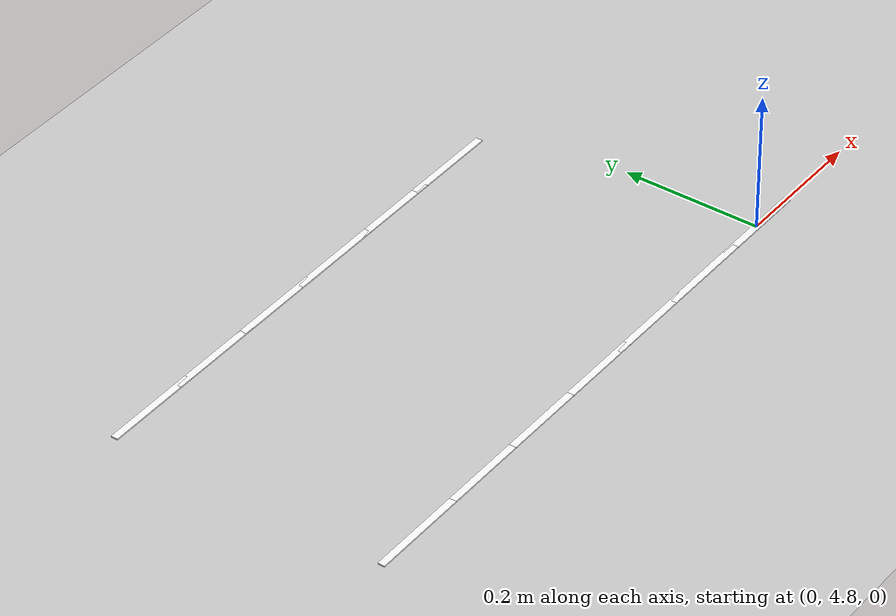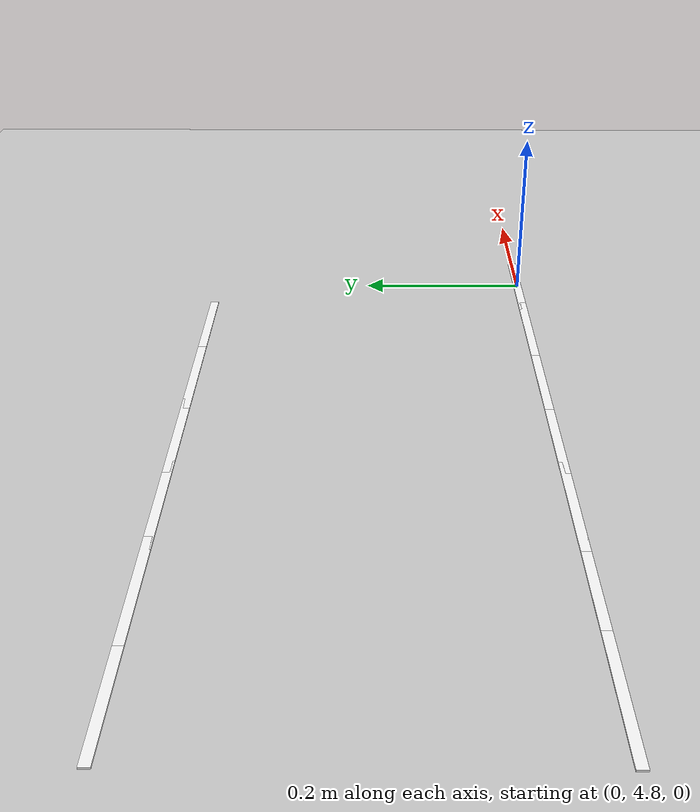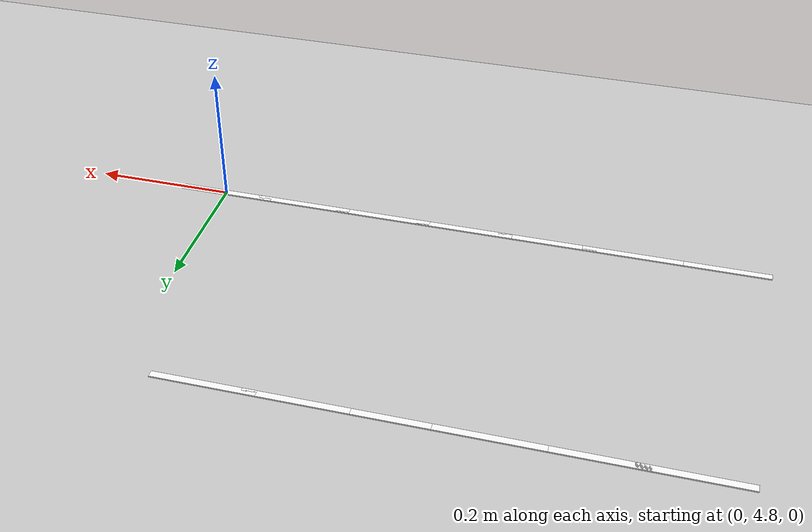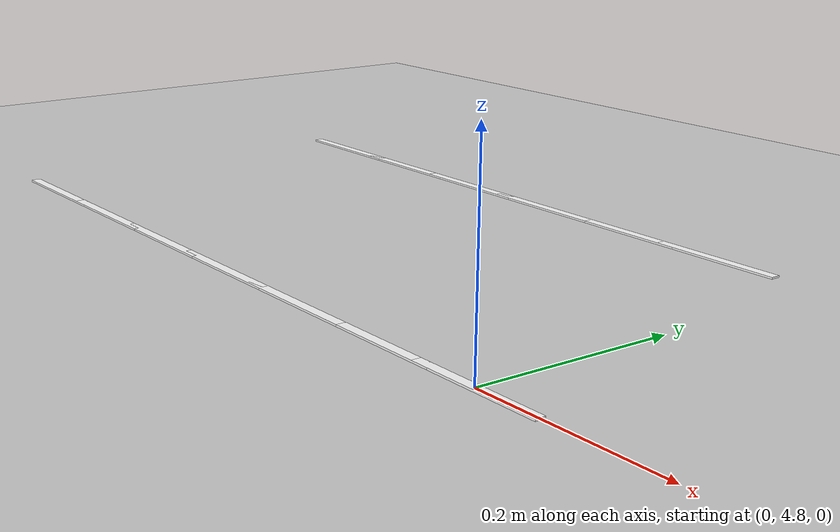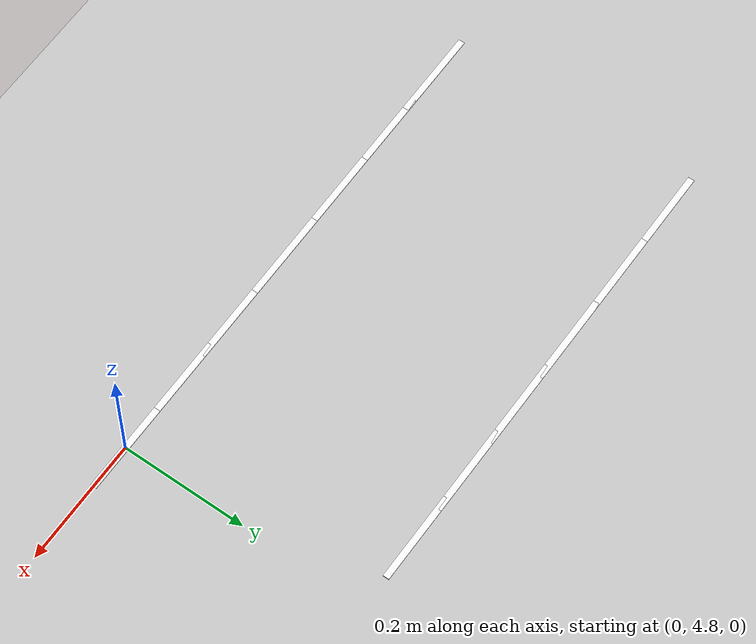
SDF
<sdf version="1.7">
 <world name="default">
  <model name="ground_plane">
   <static>1</static>
   <link name="link">
    <collision name="collision">
     <geometry><plane><normal>0 0 1</normal><size>100 100</size></plane></geometry>
     <surface>
      <contact><collide_bitmask>65535</collide_bitmask></contact>
      <friction><ode><mu>100</mu><mu2>50</mu2></ode></friction>
     </surface>
    </collision>
    <visual name="visual">
     <cast_shadows>0</cast_shadows>
     <geometry><plane><normal>0 0 1</normal><size>100 100</size></plane></geometry>
     <material>
      <script><uri>file://media/materials/scripts/gazebo.material</uri><name>Gazebo/Grey</name></script>
     </material>
    </visual>
   </link>
  </model>
  <model name="lane_line_left_224">
   <static>1</static>
   <link name="link">
    <pose>0 0 -0.004 0 -0 0</pose>
    <visual name="visual">
     <geometry><box><size>0.1424 0.01 0.01</size></box></geometry>
     <material><ambient>1 1 1 1</ambient><diffuse>1 1 1 1</diffuse></material>
    </visual>
    <collision name="collision"><geometry><box><size>0.1424 0.01 0.01</size></box></geometry></collision>
   </link>
   <pose>0 4.8 0 0 -0 3.14159</pose>
  </model>
  <model name="lane_line_left_225">
   <static>1</static>
   <link name="link">
    <pose>0 0 -0.004 0 -0 0</pose>
    <visual name="visual">
     <geometry><box><size>0.1424 0.01 0.01</size></box></geometry>
     <material><ambient>1 1 1 1</ambient><diffuse>1 1 1 1</diffuse></material>
    </visual>
    <collision name="collision"><geometry><box><size>0.1424 0.01 0.01</size></box></geometry></collision>
   </link>
   <pose>-0.122449 4.8 0 0 -0 3.14159</pose>
  </model>
  <model name="lane_line_right_225">
   <static>1</static>
   <link name="link">
    <pose>0 0 -0.004 0 -0 0</pose>
    <visual name="visual">
     <geometry><box><size>0.1424 0.01 0.01</size></box></geometry>
     <material><ambient>1 1 1 1</ambient><diffuse>1 1 1 1</diffuse></material>
    </visual>
    <collision name="collision"><geometry><box><size>0.1424 0.01 0.01</size></box></geometry></collision>
   </link>
   <pose>-0.122449 5.2 0 0 -0 3.14159</pose>
  </model>
  <model name="lane_line_left_226">
   <static>1</static>
   <link name="link">
    <pose>0 0 -0.004 0 -0 0</pose>
    <visual name="visual">
     <geometry><box><size>0.1424 0.01 0.01</size></box></geometry>
     <material><ambient>1 1 1 1</ambient><diffuse>1 1 1 1</diffuse></material>
    </visual>
    <collision name="collision"><geometry><box><size>0.1424 0.01 0.01</size></box></geometry></collision>
   </link>
   <pose>-0.244898 4.8 0 0 -0 3.14159</pose>
  </model>
  <model name="lane_line_right_226">
   <static>1</static>
   <link name="link">
    <pose>0 0 -0.004 0 -0 0</pose>
    <visual name="visual">
     <geometry><box><size>0.1424 0.01 0.01</size></box></geometry>
     <material><ambient>1 1 1 1</ambient><diffuse>1 1 1 1</diffuse></material>
    </visual>
    <collision name="collision"><geometry><box><size>0.1424 0.01 0.01</size></box></geometry></collision>
   </link>
   <pose>-0.244898 5.2 0 0 -0 3.14159</pose>
  </model>
  <model name="lane_line_left_227">
   <static>1</static>
   <link name="link">
    <pose>0 0 -0.004 0 -0 0</pose>
    <visual name="visual">
     <geometry><box><size>0.1424 0.01 0.01</size></box></geometry>
     <material><ambient>1 1 1 1</ambient><diffuse>1 1 1 1</diffuse></material>
    </visual>
    <collision name="collision"><geometry><box><size>0.1424 0.01 0.01</size></box></geometry></collision>
   </link>
   <pose>-0.367347 4.8 0 0 -0 3.14159</pose>
  </model>
  <model name="lane_line_right_227">
   <static>1</static>
   <link name="link">
    <pose>0 0 -0.004 0 -0 0</pose>
    <visual name="visual">
     <geometry><box><size>0.1424 0.01 0.01</size></box></geometry>
     <material><ambient>1 1 1 1</ambient><diffuse>1 1 1 1</diffuse></material>
    </visual>
    <collision name="collision"><geometry><box><size>0.1424 0.01 0.01</size></box></geometry></collision>
   </link>
   <pose>-0.367347 5.2 0 0 -0 3.14159</pose>
  </model>
  <model name="lane_line_left_228">
   <static>1</static>
   <link name="link">
    <pose>0 0 -0.004 0 -0 0</pose>
    <visual name="visual">
     <geometry><box><size>0.1424 0.01 0.01</size></box></geometry>
     <material><ambient>1 1 1 1</ambient><diffuse>1 1 1 1</diffuse></material>
    </visual>
    <collision name="collision"><geometry><box><size>0.1424 0.01 0.01</size></box></geometry></collision>
   </link>
   <pose>-0.489796 4.8 0 0 -0 3.14159</pose>
  </model>
  <model name="lane_line_right_228">
   <static>1</static>
   <link name="link">
    <pose>0 0 -0.004 0 -0 0</pose>
    <visual name="visual">
     <geometry><box><size>0.1424 0.01 0.01</size></box></geometry>
     <material><ambient>1 1 1 1</ambient><diffuse>1 1 1 1</diffuse></material>
    </visual>
    <collision name="collision"><geometry><box><size>0.1424 0.01 0.01</size></box></geometry></collision>
   </link>
   <pose>-0.489796 5.2 0 0 -0 3.14159</pose>
  </model>
  <model name="lane_line_left_229">
   <static>1</static>
   <link name="link">
    <pose>0 0 -0.004 0 -0 0</pose>
    <visual name="visual">
     <geometry><box><size>0.1424 0.01 0.01</size></box></geometry>
     <material><ambient>1 1 1 1</ambient><diffuse>1 1 1 1</diffuse></material>
    </visual>
    <collision name="collision"><geometry><box><size>0.1424 0.01 0.01</size></box></geometry></collision>
   </link>
   <pose>-0.612245 4.8 0 0 -0 3.14159</pose>
  </model>
  <model name="lane_line_right_229">
   <static>1</static>
   <link name="link">
    <pose>0 0 -0.004 0 -0 0</pose>
    <visual name="visual">
     <geometry><box><size>0.1424 0.01 0.01</size></box></geometry>
     <material><ambient>1 1 1 1</ambient><diffuse>1 1 1 1</diffuse></material>
    </visual>
    <collision name="collision"><geometry><box><size>0.1424 0.01 0.01</size></box></geometry></collision>
   </link>
   <pose>-0.612245 5.2 0 0 -0 3.14159</pose>
  </model>
  <model name="lane_line_left_230">
   <static>1</static>
   <link name="link">
    <pose>0 0 -0.004 0 -0 0</pose>
    <visual name="visual">
     <geometry><box><size>0.1424 0.01 0.01</size></box></geometry>
     <material><ambient>1 1 1 1</ambient><diffuse>1 1 1 1</diffuse></material>
    </visual>
    <collision name="collision"><geometry><box><size>0.1424 0.01 0.01</size></box></geometry></collision>
   </link>
   <pose>-0.734694 4.8 0 0 -0 3.14159</pose>
  </model>
  <model name="lane_line_right_230">
   <static>1</static>
   <link name="link">
    <pose>0 0 -0.004 0 -0 0</pose>
    <visual name="visual">
     <geometry><box><size>0.1424 0.01 0.01</size></box></geometry>
     <material><ambient>1 1 1 1</ambient><diffuse>1 1 1 1</diffuse></material>
    </visual>
    <collision name="collision"><geometry><box><size>0.1424 0.01 0.01</size></box></geometry></collision>
   </link>
   <pose>-0.734694 5.2 0 0 -0 3.14159</pose>
  </model>
 </world>
</sdf>
